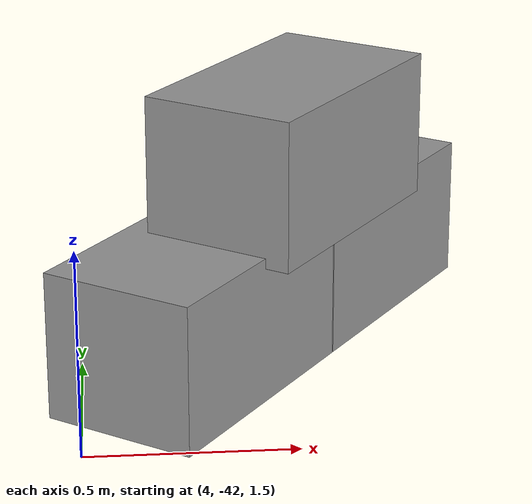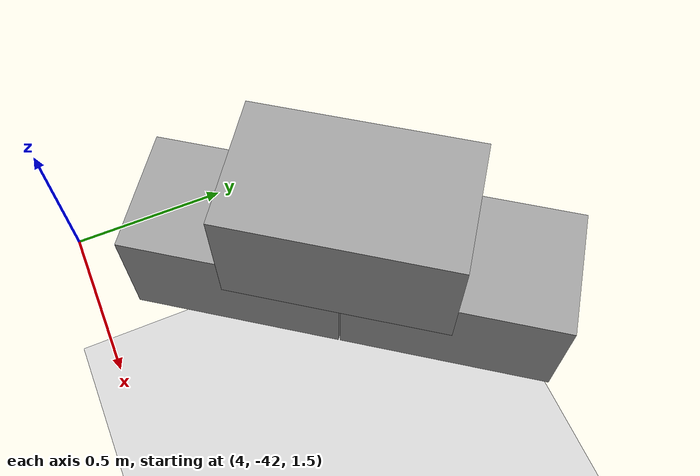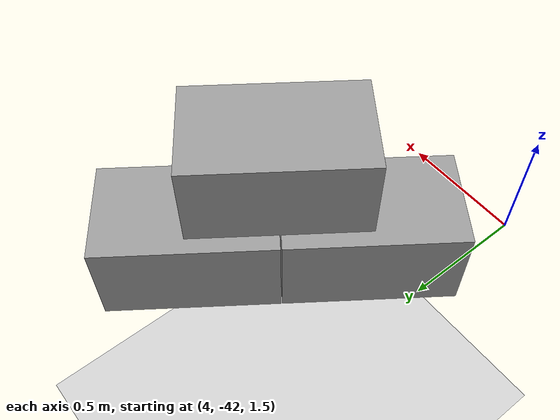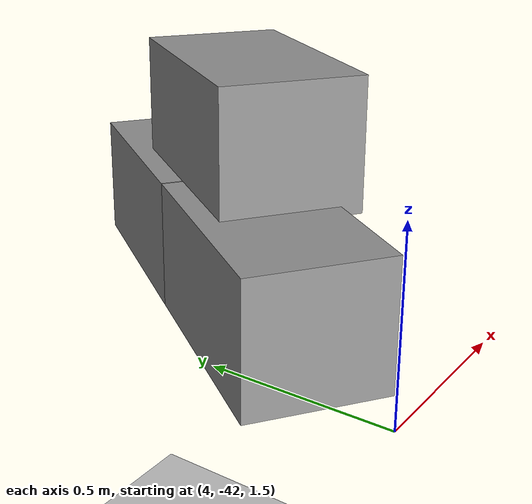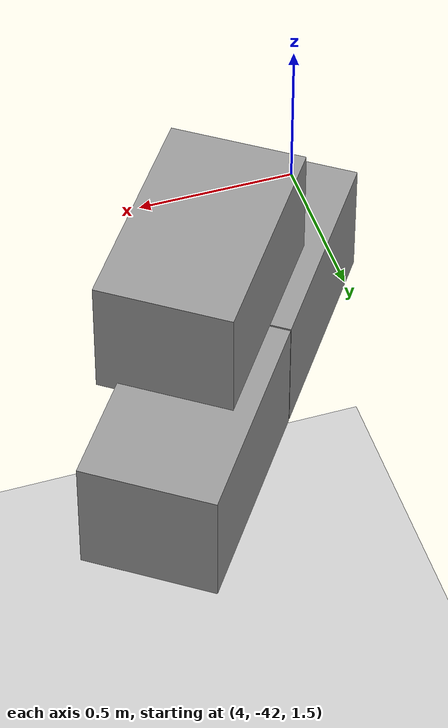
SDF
<sdf version="1.7">
 <world name="default">
  <model name="ground_plane">
   <static>1</static>
   <link name="link">
    <collision name="collision">
     <geometry><plane><normal>0 0 1</normal><size>100 100</size></plane></geometry>
     <surface>
      <contact><collide_bitmask>65535</collide_bitmask></contact>
      <friction><ode><mu>100</mu><mu2>50</mu2></ode></friction>
     </surface>
    </collision>
    <visual name="visual">
     <cast_shadows>0</cast_shadows>
     <geometry><plane><normal>0 0 1</normal><size>100 100</size></plane></geometry>
     <material>
      <script><uri>file://media/materials/scripts/gazebo.material</uri><name>Gazebo/Grey</name></script>
     </material>
    </visual>
   </link>
  </model>
  <model name="Add_Box_clone_clone_3_clone_20">
   <link name="link">
    <inertial>
     <mass>1</mass>
     <inertia>
      <ixx>0.166667</ixx>
      <ixy>0</ixy>
      <ixz>0</ixz>
      <iyy>0.166667</iyy>
      <iyz>0</iyz>
      <izz>0.166667</izz>
     </inertia>
    </inertial>
    <kinematic>1</kinematic>
    <gravity>0</gravity>
    <visual name="visual">
     <geometry><box><size>0.686 0.406 0.381</size></box></geometry>
     <material>
      <script><name>Gazebo/Grey</name><uri>file://media/materials/scripts/gazebo.material</uri></script>
      <shader type="pixel"><normal_map>__default__</normal_map></shader>
      <ambient>0.3 0.3 0.3 1</ambient>
      <diffuse>0.7 0.7 0.7 1</diffuse>
      <specular>0.01 0.01 0.01 1</specular>
      <emissive>0 0 0 1</emissive>
     </material>
    </visual>
    <collision name="collision">
     <geometry><box><size>1 1 1</size></box></geometry>
     <surface>
      <friction>
       <ode><mu>1</mu><mu2>1</mu2><fdir1>0 0 0</fdir1><slip1>0</slip1><slip2>0</slip2></ode>
       <torsional>
        <coefficient>1</coefficient>
        <patch_radius>0</patch_radius>
        <surface_radius>0</surface_radius>
        <use_patch_radius>1</use_patch_radius>
        <ode><slip>0</slip></ode>
       </torsional>
      </friction>
      <bounce><restitution_coefficient>0</restitution_coefficient><threshold>1e+06</threshold></bounce>
      <contact>
       <collide_without_contact>0</collide_without_contact>
       <collide_without_contact_bitmask>1</collide_without_contact_bitmask>
       <collide_bitmask>1</collide_bitmask>
       <ode>
        <soft_cfm>0</soft_cfm>
        <soft_erp>0.2</soft_erp>
        <kp>1e+13</kp>
        <kd>1</kd>
        <max_vel>0.01</max_vel>
        <min_depth>0</min_depth>
       </ode>
       <bullet>
        <split_impulse>1</split_impulse>
        <split_impulse_penetration_threshold>-0.01</split_impulse_penetration_threshold>
        <soft_cfm>0</soft_cfm>
        <soft_erp>0.2</soft_erp>
        <kp>1e+13</kp>
        <kd>1</kd>
       </bullet>
      </contact>
     </surface>
    </collision>
   </link>
   <link name="link_clone">
    <inertial>
     <mass>1</mass>
     <inertia>
      <ixx>0.166667</ixx>
      <ixy>0</ixy>
      <ixz>0</ixz>
      <iyy>0.166667</iyy>
      <iyz>0</iyz>
      <izz>0.166667</izz>
     </inertia>
    </inertial>
    <pose>-0.343354 -0.063316 0.354303 1e-05 -0 0</pose>
    <gravity>0</gravity>
    <visual name="visual">
     <geometry><box><size>0.686 0.406 0.381</size></box></geometry>
     <material>
      <script><name>Gazebo/Grey</name><uri>file://media/materials/scripts/gazebo.material</uri></script>
      <shader type="pixel"><normal_map>__default__</normal_map></shader>
      <ambient>0.3 0.3 0.3 1</ambient>
      <diffuse>0.7 0.7 0.7 1</diffuse>
      <specular>0.01 0.01 0.01 1</specular>
      <emissive>0 0 0 1</emissive>
     </material>
    </visual>
    <collision name="collision">
     <geometry><box><size>1 1 1</size></box></geometry>
     <surface>
      <friction>
       <ode><mu>1</mu><mu2>1</mu2><fdir1>0 0 0</fdir1><slip1>0</slip1><slip2>0</slip2></ode>
       <torsional>
        <coefficient>1</coefficient>
        <patch_radius>0</patch_radius>
        <surface_radius>0</surface_radius>
        <use_patch_radius>1</use_patch_radius>
        <ode><slip>0</slip></ode>
       </torsional>
      </friction>
      <bounce><restitution_coefficient>0</restitution_coefficient><threshold>1e+06</threshold></bounce>
      <contact>
       <collide_without_contact>0</collide_without_contact>
       <collide_without_contact_bitmask>1</collide_without_contact_bitmask>
       <collide_bitmask>1</collide_bitmask>
       <ode>
        <soft_cfm>0</soft_cfm>
        <soft_erp>0.2</soft_erp>
        <kp>1e+13</kp>
        <kd>1</kd>
        <max_vel>0.01</max_vel>
        <min_depth>0</min_depth>
       </ode>
       <bullet>
        <split_impulse>1</split_impulse>
        <split_impulse_penetration_threshold>-0.01</split_impulse_penetration_threshold>
        <soft_cfm>0</soft_cfm>
        <soft_erp>0.2</soft_erp>
        <kp>1e+13</kp>
        <kd>1</kd>
       </bullet>
      </contact>
     </surface>
    </collision>
   </link>
   <link name="link_clone_clone">
    <inertial>
     <mass>1</mass>
     <inertia>
      <ixx>0.166667</ixx>
      <ixy>0</ixy>
      <ixz>0</ixz>
      <iyy>0.166667</iyy>
      <iyz>0</iyz>
      <izz>0.166667</izz>
     </inertia>
    </inertial>
    <pose>-0.690786 -0.000183 -1e-05 2e-05 -0 0</pose>
    <gravity>0</gravity>
    <visual name="visual">
     <geometry><box><size>0.686 0.406 0.381</size></box></geometry>
     <material>
      <script><name>Gazebo/Grey</name><uri>file://media/materials/scripts/gazebo.material</uri></script>
      <shader type="pixel"><normal_map>__default__</normal_map></shader>
      <ambient>0.3 0.3 0.3 1</ambient>
      <diffuse>0.7 0.7 0.7 1</diffuse>
      <specular>0.01 0.01 0.01 1</specular>
      <emissive>0 0 0 1</emissive>
     </material>
    </visual>
    <collision name="collision">
     <geometry><box><size>1 1 1</size></box></geometry>
     <surface>
      <friction>
       <ode><mu>1</mu><mu2>1</mu2><fdir1>0 0 0</fdir1><slip1>0</slip1><slip2>0</slip2></ode>
       <torsional>
        <coefficient>1</coefficient>
        <patch_radius>0</patch_radius>
        <surface_radius>0</surface_radius>
        <use_patch_radius>1</use_patch_radius>
        <ode><slip>0</slip></ode>
       </torsional>
      </friction>
      <bounce><restitution_coefficient>0</restitution_coefficient><threshold>1e+06</threshold></bounce>
      <contact>
       <collide_without_contact>0</collide_without_contact>
       <collide_without_contact_bitmask>1</collide_without_contact_bitmask>
       <collide_bitmask>1</collide_bitmask>
       <ode>
        <soft_cfm>0</soft_cfm>
        <soft_erp>0.2</soft_erp>
        <kp>1e+13</kp>
        <kd>1</kd>
        <max_vel>0.01</max_vel>
        <min_depth>0</min_depth>
       </ode>
       <bullet>
        <split_impulse>1</split_impulse>
        <split_impulse_penetration_threshold>-0.01</split_impulse_penetration_threshold>
        <soft_cfm>0</soft_cfm>
        <soft_erp>0.2</soft_erp>
        <kp>1e+13</kp>
        <kd>1</kd>
       </bullet>
      </contact>
     </surface>
    </collision>
   </link>
   <static>0</static>
   <pose>4.68385 -40.9177 1.61518 0 -0 0.950497</pose>
  </model>
 </world>
</sdf>
